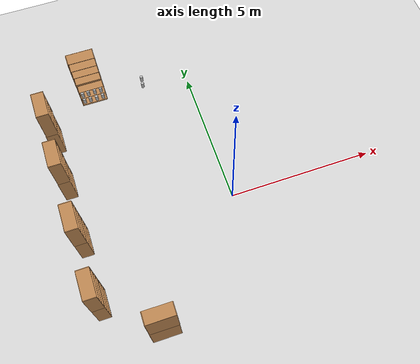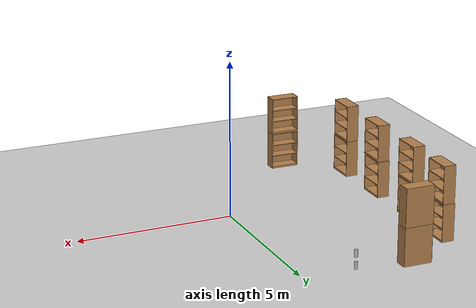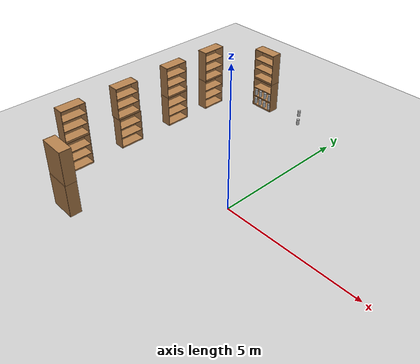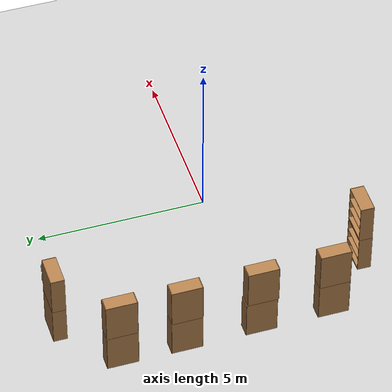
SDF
<sdf version="1.7">
 <world name="default">
  <model name="ground_plane">
   <static>1</static>
   <link name="link">
    <collision name="collision">
     <geometry><plane><normal>0 0 1</normal><size>100 100</size></plane></geometry>
     <surface><friction><ode><mu>100</mu><mu2>50</mu2></ode></friction></surface>
    </collision>
    <visual name="visual">
     <cast_shadows>0</cast_shadows>
     <geometry><plane><normal>0 0 1</normal><size>100 100</size></plane></geometry>
     <material>
      <script><uri>file://media/materials/scripts/gazebo.material</uri><name>Gazebo/Grey</name></script>
     </material>
    </visual>
   </link>
  </model>
  <model name="bookshelf_2_clone_clone">
   <static>1</static>
   <link name="link">
    <inertial><mass>1</mass></inertial>
    <collision name="back">
     <pose>0 0.005 0.6 0 -0 0</pose>
     <geometry><box><size>0.9 0.01 1.2</size></box></geometry>
    </collision>
    <visual name="visual1">
     <pose>0 0.005 0.6 0 -0 0</pose>
     <geometry><box><size>0.9 0.01 1.2</size></box></geometry>
     <material>
      <script><uri>file://media/materials/scripts/gazebo.material</uri><name>Gazebo/Wood</name></script>
     </material>
    </visual>
    <collision name="left_side">
     <pose>0.45 -0.195 0.6 0 -0 0</pose>
     <geometry><box><size>0.02 0.4 1.2</size></box></geometry>
    </collision>
    <visual name="visual2">
     <pose>0.45 -0.195 0.6 0 -0 0</pose>
     <geometry><box><size>0.02 0.4 1.2</size></box></geometry>
     <material>
      <script><uri>file://media/materials/scripts/gazebo.material</uri><name>Gazebo/Wood</name></script>
     </material>
    </visual>
    <collision name="right_side">
     <pose>-0.45 -0.195 0.6 0 -0 0</pose>
     <geometry><box><size>0.02 0.4 1.2</size></box></geometry>
    </collision>
    <visual name="visual3">
     <pose>-0.45 -0.195 0.6 0 -0 0</pose>
     <geometry><box><size>0.02 0.4 1.2</size></box></geometry>
     <material>
      <script><uri>file://media/materials/scripts/gazebo.material</uri><name>Gazebo/Wood</name></script>
     </material>
    </visual>
    <collision name="bottom">
     <pose>0 -0.195 0.03 0 -0 0</pose>
     <geometry><box><size>0.88 0.4 0.06</size></box></geometry>
    </collision>
    <visual name="visual4">
     <pose>0 -0.195 0.03 0 -0 0</pose>
     <geometry><box><size>0.88 0.4 0.06</size></box></geometry>
     <material>
      <script><uri>file://media/materials/scripts/gazebo.material</uri><name>Gazebo/Wood</name></script>
     </material>
    </visual>
    <collision name="top">
     <pose>0 -0.195 1.19 0 -0 0</pose>
     <geometry><box><size>0.88 0.4 0.02</size></box></geometry>
    </collision>
    <visual name="visual5">
     <pose>0 -0.195 1.19 0 -0 0</pose>
     <geometry><box><size>0.88 0.4 0.02</size></box></geometry>
     <material>
      <script><uri>file://media/materials/scripts/gazebo.material</uri><name>Gazebo/Wood</name></script>
     </material>
    </visual>
    <collision name="low_shelf">
     <pose>0 -0.195 0.43 0 -0 0</pose>
     <geometry><box><size>0.88 0.4 0.02</size></box></geometry>
    </collision>
    <visual name="visual6">
     <pose>0 -0.195 0.43 0 -0 0</pose>
     <geometry><box><size>0.88 0.4 0.02</size></box></geometry>
     <material>
      <script><uri>file://media/materials/scripts/gazebo.material</uri><name>Gazebo/Wood</name></script>
     </material>
    </visual>
    <collision name="high_shelf">
     <pose>0 -0.195 0.8 0 -0 0</pose>
     <geometry><box><size>0.88 0.4 0.02</size></box></geometry>
    </collision>
    <visual name="visual7">
     <pose>0 -0.195 0.8 0 -0 0</pose>
     <geometry><box><size>0.88 0.4 0.02</size></box></geometry>
     <material>
      <script><uri>file://media/materials/scripts/gazebo.material</uri><name>Gazebo/Wood</name></script>
     </material>
    </visual>
   </link>
   <pose>-3.46853 5.62428 0 0 -0 0</pose>
  </model>
  <model name="bookshelf_3_clone_clone">
   <static>1</static>
   <link name="link">
    <inertial><mass>1</mass></inertial>
    <collision name="back">
     <pose>0 0.005 0.6 0 -0 0</pose>
     <geometry><box><size>0.9 0.01 1.2</size></box></geometry>
    </collision>
    <visual name="visual1">
     <pose>0 0.005 0.6 0 -0 0</pose>
     <geometry><box><size>0.9 0.01 1.2</size></box></geometry>
     <material>
      <script><uri>file://media/materials/scripts/gazebo.material</uri><name>Gazebo/Wood</name></script>
     </material>
    </visual>
    <collision name="left_side">
     <pose>0.45 -0.195 0.6 0 -0 0</pose>
     <geometry><box><size>0.02 0.4 1.2</size></box></geometry>
    </collision>
    <visual name="visual2">
     <pose>0.45 -0.195 0.6 0 -0 0</pose>
     <geometry><box><size>0.02 0.4 1.2</size></box></geometry>
     <material>
      <script><uri>file://media/materials/scripts/gazebo.material</uri><name>Gazebo/Wood</name></script>
     </material>
    </visual>
    <collision name="right_side">
     <pose>-0.45 -0.195 0.6 0 -0 0</pose>
     <geometry><box><size>0.02 0.4 1.2</size></box></geometry>
    </collision>
    <visual name="visual3">
     <pose>-0.45 -0.195 0.6 0 -0 0</pose>
     <geometry><box><size>0.02 0.4 1.2</size></box></geometry>
     <material>
      <script><uri>file://media/materials/scripts/gazebo.material</uri><name>Gazebo/Wood</name></script>
     </material>
    </visual>
    <collision name="bottom">
     <pose>0 -0.195 0.03 0 -0 0</pose>
     <geometry><box><size>0.88 0.4 0.06</size></box></geometry>
    </collision>
    <visual name="visual4">
     <pose>0 -0.195 0.03 0 -0 0</pose>
     <geometry><box><size>0.88 0.4 0.06</size></box></geometry>
     <material>
      <script><uri>file://media/materials/scripts/gazebo.material</uri><name>Gazebo/Wood</name></script>
     </material>
    </visual>
    <collision name="top">
     <pose>0 -0.195 1.19 0 -0 0</pose>
     <geometry><box><size>0.88 0.4 0.02</size></box></geometry>
    </collision>
    <visual name="visual5">
     <pose>0 -0.195 1.19 0 -0 0</pose>
     <geometry><box><size>0.88 0.4 0.02</size></box></geometry>
     <material>
      <script><uri>file://media/materials/scripts/gazebo.material</uri><name>Gazebo/Wood</name></script>
     </material>
    </visual>
    <collision name="low_shelf">
     <pose>0 -0.195 0.43 0 -0 0</pose>
     <geometry><box><size>0.88 0.4 0.02</size></box></geometry>
    </collision>
    <visual name="visual6">
     <pose>0 -0.195 0.43 0 -0 0</pose>
     <geometry><box><size>0.88 0.4 0.02</size></box></geometry>
     <material>
      <script><uri>file://media/materials/scripts/gazebo.material</uri><name>Gazebo/Wood</name></script>
     </material>
    </visual>
    <collision name="high_shelf">
     <pose>0 -0.195 0.8 0 -0 0</pose>
     <geometry><box><size>0.88 0.4 0.02</size></box></geometry>
    </collision>
    <visual name="visual7">
     <pose>0 -0.195 0.8 0 -0 0</pose>
     <geometry><box><size>0.88 0.4 0.02</size></box></geometry>
     <material>
      <script><uri>file://media/materials/scripts/gazebo.material</uri><name>Gazebo/Wood</name></script>
     </material>
    </visual>
   </link>
   <pose>-3.47373 5.62521 1.20481 0 -0 0</pose>
  </model>
  <model name="bookshelf_5_clone_5">
   <static>1</static>
   <link name="link">
    <inertial><mass>1</mass></inertial>
    <collision name="back">
     <pose>0 0.005 0.6 0 -0 0</pose>
     <geometry><box><size>0.9 0.01 1.2</size></box></geometry>
    </collision>
    <visual name="visual1">
     <pose>0 0.005 0.6 0 -0 0</pose>
     <geometry><box><size>0.9 0.01 1.2</size></box></geometry>
     <material>
      <script><uri>file://media/materials/scripts/gazebo.material</uri><name>Gazebo/Wood</name></script>
     </material>
    </visual>
    <collision name="left_side">
     <pose>0.45 -0.195 0.6 0 -0 0</pose>
     <geometry><box><size>0.02 0.4 1.2</size></box></geometry>
    </collision>
    <visual name="visual2">
     <pose>0.45 -0.195 0.6 0 -0 0</pose>
     <geometry><box><size>0.02 0.4 1.2</size></box></geometry>
     <material>
      <script><uri>file://media/materials/scripts/gazebo.material</uri><name>Gazebo/Wood</name></script>
     </material>
    </visual>
    <collision name="right_side">
     <pose>-0.45 -0.195 0.6 0 -0 0</pose>
     <geometry><box><size>0.02 0.4 1.2</size></box></geometry>
    </collision>
    <visual name="visual3">
     <pose>-0.45 -0.195 0.6 0 -0 0</pose>
     <geometry><box><size>0.02 0.4 1.2</size></box></geometry>
     <material>
      <script><uri>file://media/materials/scripts/gazebo.material</uri><name>Gazebo/Wood</name></script>
     </material>
    </visual>
    <collision name="bottom">
     <pose>0 -0.195 0.03 0 -0 0</pose>
     <geometry><box><size>0.88 0.4 0.06</size></box></geometry>
    </collision>
    <visual name="visual4">
     <pose>0 -0.195 0.03 0 -0 0</pose>
     <geometry><box><size>0.88 0.4 0.06</size></box></geometry>
     <material>
      <script><uri>file://media/materials/scripts/gazebo.material</uri><name>Gazebo/Wood</name></script>
     </material>
    </visual>
    <collision name="top">
     <pose>0 -0.195 1.19 0 -0 0</pose>
     <geometry><box><size>0.88 0.4 0.02</size></box></geometry>
    </collision>
    <visual name="visual5">
     <pose>0 -0.195 1.19 0 -0 0</pose>
     <geometry><box><size>0.88 0.4 0.02</size></box></geometry>
     <material>
      <script><uri>file://media/materials/scripts/gazebo.material</uri><name>Gazebo/Wood</name></script>
     </material>
    </visual>
    <collision name="low_shelf">
     <pose>0 -0.195 0.43 0 -0 0</pose>
     <geometry><box><size>0.88 0.4 0.02</size></box></geometry>
    </collision>
    <visual name="visual6">
     <pose>0 -0.195 0.43 0 -0 0</pose>
     <geometry><box><size>0.88 0.4 0.02</size></box></geometry>
     <material>
      <script><uri>file://media/materials/scripts/gazebo.material</uri><name>Gazebo/Wood</name></script>
     </material>
    </visual>
    <collision name="high_shelf">
     <pose>0 -0.195 0.8 0 -0 0</pose>
     <geometry><box><size>0.88 0.4 0.02</size></box></geometry>
    </collision>
    <visual name="visual7">
     <pose>0 -0.195 0.8 0 -0 0</pose>
     <geometry><box><size>0.88 0.4 0.02</size></box></geometry>
     <material>
      <script><uri>file://media/materials/scripts/gazebo.material</uri><name>Gazebo/Wood</name></script>
     </material>
    </visual>
   </link>
   <pose>-3.44979 -3.80253 0 0 -0 3.12955</pose>
  </model>
  <model name="bookshelf_5_clone_clone_1">
   <static>1</static>
   <link name="link">
    <inertial><mass>1</mass></inertial>
    <collision name="back">
     <pose>0 0.005 0.6 0 -0 0</pose>
     <geometry><box><size>0.9 0.01 1.2</size></box></geometry>
    </collision>
    <visual name="visual1">
     <pose>0 0.005 0.6 0 -0 0</pose>
     <geometry><box><size>0.9 0.01 1.2</size></box></geometry>
     <material>
      <script><uri>file://media/materials/scripts/gazebo.material</uri><name>Gazebo/Wood</name></script>
     </material>
    </visual>
    <collision name="left_side">
     <pose>0.45 -0.195 0.6 0 -0 0</pose>
     <geometry><box><size>0.02 0.4 1.2</size></box></geometry>
    </collision>
    <visual name="visual2">
     <pose>0.45 -0.195 0.6 0 -0 0</pose>
     <geometry><box><size>0.02 0.4 1.2</size></box></geometry>
     <material>
      <script><uri>file://media/materials/scripts/gazebo.material</uri><name>Gazebo/Wood</name></script>
     </material>
    </visual>
    <collision name="right_side">
     <pose>-0.45 -0.195 0.6 0 -0 0</pose>
     <geometry><box><size>0.02 0.4 1.2</size></box></geometry>
    </collision>
    <visual name="visual3">
     <pose>-0.45 -0.195 0.6 0 -0 0</pose>
     <geometry><box><size>0.02 0.4 1.2</size></box></geometry>
     <material>
      <script><uri>file://media/materials/scripts/gazebo.material</uri><name>Gazebo/Wood</name></script>
     </material>
    </visual>
    <collision name="bottom">
     <pose>0 -0.195 0.03 0 -0 0</pose>
     <geometry><box><size>0.88 0.4 0.06</size></box></geometry>
    </collision>
    <visual name="visual4">
     <pose>0 -0.195 0.03 0 -0 0</pose>
     <geometry><box><size>0.88 0.4 0.06</size></box></geometry>
     <material>
      <script><uri>file://media/materials/scripts/gazebo.material</uri><name>Gazebo/Wood</name></script>
     </material>
    </visual>
    <collision name="top">
     <pose>0 -0.195 1.19 0 -0 0</pose>
     <geometry><box><size>0.88 0.4 0.02</size></box></geometry>
    </collision>
    <visual name="visual5">
     <pose>0 -0.195 1.19 0 -0 0</pose>
     <geometry><box><size>0.88 0.4 0.02</size></box></geometry>
     <material>
      <script><uri>file://media/materials/scripts/gazebo.material</uri><name>Gazebo/Wood</name></script>
     </material>
    </visual>
    <collision name="low_shelf">
     <pose>0 -0.195 0.43 0 -0 0</pose>
     <geometry><box><size>0.88 0.4 0.02</size></box></geometry>
    </collision>
    <visual name="visual6">
     <pose>0 -0.195 0.43 0 -0 0</pose>
     <geometry><box><size>0.88 0.4 0.02</size></box></geometry>
     <material>
      <script><uri>file://media/materials/scripts/gazebo.material</uri><name>Gazebo/Wood</name></script>
     </material>
    </visual>
    <collision name="high_shelf">
     <pose>0 -0.195 0.8 0 -0 0</pose>
     <geometry><box><size>0.88 0.4 0.02</size></box></geometry>
    </collision>
    <visual name="visual7">
     <pose>0 -0.195 0.8 0 -0 0</pose>
     <geometry><box><size>0.88 0.4 0.02</size></box></geometry>
     <material>
      <script><uri>file://media/materials/scripts/gazebo.material</uri><name>Gazebo/Wood</name></script>
     </material>
    </visual>
   </link>
   <pose>-3.44383 -3.79926 1.21139 0 -0 3.12955</pose>
  </model>
  <model name="bookshelf_0_clone_0">
   <static>1</static>
   <link name="link">
    <inertial><mass>1</mass></inertial>
    <collision name="back">
     <pose>0 0.005 0.6 0 -0 0</pose>
     <geometry><box><size>0.9 0.01 1.2</size></box></geometry>
    </collision>
    <visual name="visual1">
     <pose>0 0.005 0.6 0 -0 0</pose>
     <geometry><box><size>0.9 0.01 1.2</size></box></geometry>
     <material>
      <script><uri>file://media/materials/scripts/gazebo.material</uri><name>Gazebo/Wood</name></script>
     </material>
    </visual>
    <collision name="left_side">
     <pose>0.45 -0.195 0.6 0 -0 0</pose>
     <geometry><box><size>0.02 0.4 1.2</size></box></geometry>
    </collision>
    <visual name="visual2">
     <pose>0.45 -0.195 0.6 0 -0 0</pose>
     <geometry><box><size>0.02 0.4 1.2</size></box></geometry>
     <material>
      <script><uri>file://media/materials/scripts/gazebo.material</uri><name>Gazebo/Wood</name></script>
     </material>
    </visual>
    <collision name="right_side">
     <pose>-0.45 -0.195 0.6 0 -0 0</pose>
     <geometry><box><size>0.02 0.4 1.2</size></box></geometry>
    </collision>
    <visual name="visual3">
     <pose>-0.45 -0.195 0.6 0 -0 0</pose>
     <geometry><box><size>0.02 0.4 1.2</size></box></geometry>
     <material>
      <script><uri>file://media/materials/scripts/gazebo.material</uri><name>Gazebo/Wood</name></script>
     </material>
    </visual>
    <collision name="bottom">
     <pose>0 -0.195 0.03 0 -0 0</pose>
     <geometry><box><size>0.88 0.4 0.06</size></box></geometry>
    </collision>
    <visual name="visual4">
     <pose>0 -0.195 0.03 0 -0 0</pose>
     <geometry><box><size>0.88 0.4 0.06</size></box></geometry>
     <material>
      <script><uri>file://media/materials/scripts/gazebo.material</uri><name>Gazebo/Wood</name></script>
     </material>
    </visual>
    <collision name="top">
     <pose>0 -0.195 1.19 0 -0 0</pose>
     <geometry><box><size>0.88 0.4 0.02</size></box></geometry>
    </collision>
    <visual name="visual5">
     <pose>0 -0.195 1.19 0 -0 0</pose>
     <geometry><box><size>0.88 0.4 0.02</size></box></geometry>
     <material>
      <script><uri>file://media/materials/scripts/gazebo.material</uri><name>Gazebo/Wood</name></script>
     </material>
    </visual>
    <collision name="low_shelf">
     <pose>0 -0.195 0.43 0 -0 0</pose>
     <geometry><box><size>0.88 0.4 0.02</size></box></geometry>
    </collision>
    <visual name="visual6">
     <pose>0 -0.195 0.43 0 -0 0</pose>
     <geometry><box><size>0.88 0.4 0.02</size></box></geometry>
     <material>
      <script><uri>file://media/materials/scripts/gazebo.material</uri><name>Gazebo/Wood</name></script>
     </material>
    </visual>
    <collision name="high_shelf">
     <pose>0 -0.195 0.8 0 -0 0</pose>
     <geometry><box><size>0.88 0.4 0.02</size></box></geometry>
    </collision>
    <visual name="visual7">
     <pose>0 -0.195 0.8 0 -0 0</pose>
     <geometry><box><size>0.88 0.4 0.02</size></box></geometry>
     <material>
      <script><uri>file://media/materials/scripts/gazebo.material</uri><name>Gazebo/Wood</name></script>
     </material>
    </visual>
   </link>
   <pose>-5.30935 -0.025093 0 0 -0 1.5697</pose>
  </model>
  <model name="bookshelf_0_clone_0_clone">
   <static>1</static>
   <link name="link">
    <inertial><mass>1</mass></inertial>
    <collision name="back">
     <pose>0 0.005 0.6 0 -0 0</pose>
     <geometry><box><size>0.9 0.01 1.2</size></box></geometry>
    </collision>
    <visual name="visual1">
     <pose>0 0.005 0.6 0 -0 0</pose>
     <geometry><box><size>0.9 0.01 1.2</size></box></geometry>
     <material>
      <script><uri>file://media/materials/scripts/gazebo.material</uri><name>Gazebo/Wood</name></script>
     </material>
    </visual>
    <collision name="left_side">
     <pose>0.45 -0.195 0.6 0 -0 0</pose>
     <geometry><box><size>0.02 0.4 1.2</size></box></geometry>
    </collision>
    <visual name="visual2">
     <pose>0.45 -0.195 0.6 0 -0 0</pose>
     <geometry><box><size>0.02 0.4 1.2</size></box></geometry>
     <material>
      <script><uri>file://media/materials/scripts/gazebo.material</uri><name>Gazebo/Wood</name></script>
     </material>
    </visual>
    <collision name="right_side">
     <pose>-0.45 -0.195 0.6 0 -0 0</pose>
     <geometry><box><size>0.02 0.4 1.2</size></box></geometry>
    </collision>
    <visual name="visual3">
     <pose>-0.45 -0.195 0.6 0 -0 0</pose>
     <geometry><box><size>0.02 0.4 1.2</size></box></geometry>
     <material>
      <script><uri>file://media/materials/scripts/gazebo.material</uri><name>Gazebo/Wood</name></script>
     </material>
    </visual>
    <collision name="bottom">
     <pose>0 -0.195 0.03 0 -0 0</pose>
     <geometry><box><size>0.88 0.4 0.06</size></box></geometry>
    </collision>
    <visual name="visual4">
     <pose>0 -0.195 0.03 0 -0 0</pose>
     <geometry><box><size>0.88 0.4 0.06</size></box></geometry>
     <material>
      <script><uri>file://media/materials/scripts/gazebo.material</uri><name>Gazebo/Wood</name></script>
     </material>
    </visual>
    <collision name="top">
     <pose>0 -0.195 1.19 0 -0 0</pose>
     <geometry><box><size>0.88 0.4 0.02</size></box></geometry>
    </collision>
    <visual name="visual5">
     <pose>0 -0.195 1.19 0 -0 0</pose>
     <geometry><box><size>0.88 0.4 0.02</size></box></geometry>
     <material>
      <script><uri>file://media/materials/scripts/gazebo.material</uri><name>Gazebo/Wood</name></script>
     </material>
    </visual>
    <collision name="low_shelf">
     <pose>0 -0.195 0.43 0 -0 0</pose>
     <geometry><box><size>0.88 0.4 0.02</size></box></geometry>
    </collision>
    <visual name="visual6">
     <pose>0 -0.195 0.43 0 -0 0</pose>
     <geometry><box><size>0.88 0.4 0.02</size></box></geometry>
     <material>
      <script><uri>file://media/materials/scripts/gazebo.material</uri><name>Gazebo/Wood</name></script>
     </material>
    </visual>
    <collision name="high_shelf">
     <pose>0 -0.195 0.8 0 -0 0</pose>
     <geometry><box><size>0.88 0.4 0.02</size></box></geometry>
    </collision>
    <visual name="visual7">
     <pose>0 -0.195 0.8 0 -0 0</pose>
     <geometry><box><size>0.88 0.4 0.02</size></box></geometry>
     <material>
      <script><uri>file://media/materials/scripts/gazebo.material</uri><name>Gazebo/Wood</name></script>
     </material>
    </visual>
   </link>
   <pose>-5.33454 2.15943 0 0 -0 1.5697</pose>
  </model>
  <model name="bookshelf_0_clone_0_clone_0">
   <static>1</static>
   <link name="link">
    <inertial><mass>1</mass></inertial>
    <collision name="back">
     <pose>0 0.005 0.6 0 -0 0</pose>
     <geometry><box><size>0.9 0.01 1.2</size></box></geometry>
    </collision>
    <visual name="visual1">
     <pose>0 0.005 0.6 0 -0 0</pose>
     <geometry><box><size>0.9 0.01 1.2</size></box></geometry>
     <material>
      <script><uri>file://media/materials/scripts/gazebo.material</uri><name>Gazebo/Wood</name></script>
     </material>
    </visual>
    <collision name="left_side">
     <pose>0.45 -0.195 0.6 0 -0 0</pose>
     <geometry><box><size>0.02 0.4 1.2</size></box></geometry>
    </collision>
    <visual name="visual2">
     <pose>0.45 -0.195 0.6 0 -0 0</pose>
     <geometry><box><size>0.02 0.4 1.2</size></box></geometry>
     <material>
      <script><uri>file://media/materials/scripts/gazebo.material</uri><name>Gazebo/Wood</name></script>
     </material>
    </visual>
    <collision name="right_side">
     <pose>-0.45 -0.195 0.6 0 -0 0</pose>
     <geometry><box><size>0.02 0.4 1.2</size></box></geometry>
    </collision>
    <visual name="visual3">
     <pose>-0.45 -0.195 0.6 0 -0 0</pose>
     <geometry><box><size>0.02 0.4 1.2</size></box></geometry>
     <material>
      <script><uri>file://media/materials/scripts/gazebo.material</uri><name>Gazebo/Wood</name></script>
     </material>
    </visual>
    <collision name="bottom">
     <pose>0 -0.195 0.03 0 -0 0</pose>
     <geometry><box><size>0.88 0.4 0.06</size></box></geometry>
    </collision>
    <visual name="visual4">
     <pose>0 -0.195 0.03 0 -0 0</pose>
     <geometry><box><size>0.88 0.4 0.06</size></box></geometry>
     <material>
      <script><uri>file://media/materials/scripts/gazebo.material</uri><name>Gazebo/Wood</name></script>
     </material>
    </visual>
    <collision name="top">
     <pose>0 -0.195 1.19 0 -0 0</pose>
     <geometry><box><size>0.88 0.4 0.02</size></box></geometry>
    </collision>
    <visual name="visual5">
     <pose>0 -0.195 1.19 0 -0 0</pose>
     <geometry><box><size>0.88 0.4 0.02</size></box></geometry>
     <material>
      <script><uri>file://media/materials/scripts/gazebo.material</uri><name>Gazebo/Wood</name></script>
     </material>
    </visual>
    <collision name="low_shelf">
     <pose>0 -0.195 0.43 0 -0 0</pose>
     <geometry><box><size>0.88 0.4 0.02</size></box></geometry>
    </collision>
    <visual name="visual6">
     <pose>0 -0.195 0.43 0 -0 0</pose>
     <geometry><box><size>0.88 0.4 0.02</size></box></geometry>
     <material>
      <script><uri>file://media/materials/scripts/gazebo.material</uri><name>Gazebo/Wood</name></script>
     </material>
    </visual>
    <collision name="high_shelf">
     <pose>0 -0.195 0.8 0 -0 0</pose>
     <geometry><box><size>0.88 0.4 0.02</size></box></geometry>
    </collision>
    <visual name="visual7">
     <pose>0 -0.195 0.8 0 -0 0</pose>
     <geometry><box><size>0.88 0.4 0.02</size></box></geometry>
     <material>
      <script><uri>file://media/materials/scripts/gazebo.material</uri><name>Gazebo/Wood</name></script>
     </material>
    </visual>
   </link>
   <pose>-5.32765 4.01778 0 0 -0 1.5697</pose>
  </model>
  <model name="bookshelf_0_clone_0_clone_1_clone_0">
   <static>1</static>
   <link name="link">
    <inertial><mass>1</mass></inertial>
    <collision name="back">
     <pose>0 0.005 0.6 0 -0 0</pose>
     <geometry><box><size>0.9 0.01 1.2</size></box></geometry>
    </collision>
    <visual name="visual1">
     <pose>0 0.005 0.6 0 -0 0</pose>
     <geometry><box><size>0.9 0.01 1.2</size></box></geometry>
     <material>
      <script><uri>file://media/materials/scripts/gazebo.material</uri><name>Gazebo/Wood</name></script>
     </material>
    </visual>
    <collision name="left_side">
     <pose>0.45 -0.195 0.6 0 -0 0</pose>
     <geometry><box><size>0.02 0.4 1.2</size></box></geometry>
    </collision>
    <visual name="visual2">
     <pose>0.45 -0.195 0.6 0 -0 0</pose>
     <geometry><box><size>0.02 0.4 1.2</size></box></geometry>
     <material>
      <script><uri>file://media/materials/scripts/gazebo.material</uri><name>Gazebo/Wood</name></script>
     </material>
    </visual>
    <collision name="right_side">
     <pose>-0.45 -0.195 0.6 0 -0 0</pose>
     <geometry><box><size>0.02 0.4 1.2</size></box></geometry>
    </collision>
    <visual name="visual3">
     <pose>-0.45 -0.195 0.6 0 -0 0</pose>
     <geometry><box><size>0.02 0.4 1.2</size></box></geometry>
     <material>
      <script><uri>file://media/materials/scripts/gazebo.material</uri><name>Gazebo/Wood</name></script>
     </material>
    </visual>
    <collision name="bottom">
     <pose>0 -0.195 0.03 0 -0 0</pose>
     <geometry><box><size>0.88 0.4 0.06</size></box></geometry>
    </collision>
    <visual name="visual4">
     <pose>0 -0.195 0.03 0 -0 0</pose>
     <geometry><box><size>0.88 0.4 0.06</size></box></geometry>
     <material>
      <script><uri>file://media/materials/scripts/gazebo.material</uri><name>Gazebo/Wood</name></script>
     </material>
    </visual>
    <collision name="top">
     <pose>0 -0.195 1.19 0 -0 0</pose>
     <geometry><box><size>0.88 0.4 0.02</size></box></geometry>
    </collision>
    <visual name="visual5">
     <pose>0 -0.195 1.19 0 -0 0</pose>
     <geometry><box><size>0.88 0.4 0.02</size></box></geometry>
     <material>
      <script><uri>file://media/materials/scripts/gazebo.material</uri><name>Gazebo/Wood</name></script>
     </material>
    </visual>
    <collision name="low_shelf">
     <pose>0 -0.195 0.43 0 -0 0</pose>
     <geometry><box><size>0.88 0.4 0.02</size></box></geometry>
    </collision>
    <visual name="visual6">
     <pose>0 -0.195 0.43 0 -0 0</pose>
     <geometry><box><size>0.88 0.4 0.02</size></box></geometry>
     <material>
      <script><uri>file://media/materials/scripts/gazebo.material</uri><name>Gazebo/Wood</name></script>
     </material>
    </visual>
    <collision name="high_shelf">
     <pose>0 -0.195 0.8 0 -0 0</pose>
     <geometry><box><size>0.88 0.4 0.02</size></box></geometry>
    </collision>
    <visual name="visual7">
     <pose>0 -0.195 0.8 0 -0 0</pose>
     <geometry><box><size>0.88 0.4 0.02</size></box></geometry>
     <material>
      <script><uri>file://media/materials/scripts/gazebo.material</uri><name>Gazebo/Wood</name></script>
     </material>
    </visual>
   </link>
   <pose>-5.32334 2.15341 1.21067 0 -0 1.5697</pose>
  </model>
  <model name="bookshelf_0_clone_0_clone_1_clone_1">
   <static>1</static>
   <link name="link">
    <inertial><mass>1</mass></inertial>
    <collision name="back">
     <pose>0 0.005 0.6 0 -0 0</pose>
     <geometry><box><size>0.9 0.01 1.2</size></box></geometry>
    </collision>
    <visual name="visual1">
     <pose>0 0.005 0.6 0 -0 0</pose>
     <geometry><box><size>0.9 0.01 1.2</size></box></geometry>
     <material>
      <script><uri>file://media/materials/scripts/gazebo.material</uri><name>Gazebo/Wood</name></script>
     </material>
    </visual>
    <collision name="left_side">
     <pose>0.45 -0.195 0.6 0 -0 0</pose>
     <geometry><box><size>0.02 0.4 1.2</size></box></geometry>
    </collision>
    <visual name="visual2">
     <pose>0.45 -0.195 0.6 0 -0 0</pose>
     <geometry><box><size>0.02 0.4 1.2</size></box></geometry>
     <material>
      <script><uri>file://media/materials/scripts/gazebo.material</uri><name>Gazebo/Wood</name></script>
     </material>
    </visual>
    <collision name="right_side">
     <pose>-0.45 -0.195 0.6 0 -0 0</pose>
     <geometry><box><size>0.02 0.4 1.2</size></box></geometry>
    </collision>
    <visual name="visual3">
     <pose>-0.45 -0.195 0.6 0 -0 0</pose>
     <geometry><box><size>0.02 0.4 1.2</size></box></geometry>
     <material>
      <script><uri>file://media/materials/scripts/gazebo.material</uri><name>Gazebo/Wood</name></script>
     </material>
    </visual>
    <collision name="bottom">
     <pose>0 -0.195 0.03 0 -0 0</pose>
     <geometry><box><size>0.88 0.4 0.06</size></box></geometry>
    </collision>
    <visual name="visual4">
     <pose>0 -0.195 0.03 0 -0 0</pose>
     <geometry><box><size>0.88 0.4 0.06</size></box></geometry>
     <material>
      <script><uri>file://media/materials/scripts/gazebo.material</uri><name>Gazebo/Wood</name></script>
     </material>
    </visual>
    <collision name="top">
     <pose>0 -0.195 1.19 0 -0 0</pose>
     <geometry><box><size>0.88 0.4 0.02</size></box></geometry>
    </collision>
    <visual name="visual5">
     <pose>0 -0.195 1.19 0 -0 0</pose>
     <geometry><box><size>0.88 0.4 0.02</size></box></geometry>
     <material>
      <script><uri>file://media/materials/scripts/gazebo.material</uri><name>Gazebo/Wood</name></script>
     </material>
    </visual>
    <collision name="low_shelf">
     <pose>0 -0.195 0.43 0 -0 0</pose>
     <geometry><box><size>0.88 0.4 0.02</size></box></geometry>
    </collision>
    <visual name="visual6">
     <pose>0 -0.195 0.43 0 -0 0</pose>
     <geometry><box><size>0.88 0.4 0.02</size></box></geometry>
     <material>
      <script><uri>file://media/materials/scripts/gazebo.material</uri><name>Gazebo/Wood</name></script>
     </material>
    </visual>
    <collision name="high_shelf">
     <pose>0 -0.195 0.8 0 -0 0</pose>
     <geometry><box><size>0.88 0.4 0.02</size></box></geometry>
    </collision>
    <visual name="visual7">
     <pose>0 -0.195 0.8 0 -0 0</pose>
     <geometry><box><size>0.88 0.4 0.02</size></box></geometry>
     <material>
      <script><uri>file://media/materials/scripts/gazebo.material</uri><name>Gazebo/Wood</name></script>
     </material>
    </visual>
   </link>
   <pose>-5.31196 4.0164 1.21067 0 -0 1.5697</pose>
  </model>
  <model name="bookshelf_0_clone_0_clone_1">
   <static>1</static>
   <link name="link">
    <inertial><mass>1</mass></inertial>
    <collision name="back">
     <pose>0 0.005 0.6 0 -0 0</pose>
     <geometry><box><size>0.9 0.01 1.2</size></box></geometry>
    </collision>
    <visual name="visual1">
     <pose>0 0.005 0.6 0 -0 0</pose>
     <geometry><box><size>0.9 0.01 1.2</size></box></geometry>
     <material>
      <script><uri>file://media/materials/scripts/gazebo.material</uri><name>Gazebo/Wood</name></script>
     </material>
    </visual>
    <collision name="left_side">
     <pose>0.45 -0.195 0.6 0 -0 0</pose>
     <geometry><box><size>0.02 0.4 1.2</size></box></geometry>
    </collision>
    <visual name="visual2">
     <pose>0.45 -0.195 0.6 0 -0 0</pose>
     <geometry><box><size>0.02 0.4 1.2</size></box></geometry>
     <material>
      <script><uri>file://media/materials/scripts/gazebo.material</uri><name>Gazebo/Wood</name></script>
     </material>
    </visual>
    <collision name="right_side">
     <pose>-0.45 -0.195 0.6 0 -0 0</pose>
     <geometry><box><size>0.02 0.4 1.2</size></box></geometry>
    </collision>
    <visual name="visual3">
     <pose>-0.45 -0.195 0.6 0 -0 0</pose>
     <geometry><box><size>0.02 0.4 1.2</size></box></geometry>
     <material>
      <script><uri>file://media/materials/scripts/gazebo.material</uri><name>Gazebo/Wood</name></script>
     </material>
    </visual>
    <collision name="bottom">
     <pose>0 -0.195 0.03 0 -0 0</pose>
     <geometry><box><size>0.88 0.4 0.06</size></box></geometry>
    </collision>
    <visual name="visual4">
     <pose>0 -0.195 0.03 0 -0 0</pose>
     <geometry><box><size>0.88 0.4 0.06</size></box></geometry>
     <material>
      <script><uri>file://media/materials/scripts/gazebo.material</uri><name>Gazebo/Wood</name></script>
     </material>
    </visual>
    <collision name="top">
     <pose>0 -0.195 1.19 0 -0 0</pose>
     <geometry><box><size>0.88 0.4 0.02</size></box></geometry>
    </collision>
    <visual name="visual5">
     <pose>0 -0.195 1.19 0 -0 0</pose>
     <geometry><box><size>0.88 0.4 0.02</size></box></geometry>
     <material>
      <script><uri>file://media/materials/scripts/gazebo.material</uri><name>Gazebo/Wood</name></script>
     </material>
    </visual>
    <collision name="low_shelf">
     <pose>0 -0.195 0.43 0 -0 0</pose>
     <geometry><box><size>0.88 0.4 0.02</size></box></geometry>
    </collision>
    <visual name="visual6">
     <pose>0 -0.195 0.43 0 -0 0</pose>
     <geometry><box><size>0.88 0.4 0.02</size></box></geometry>
     <material>
      <script><uri>file://media/materials/scripts/gazebo.material</uri><name>Gazebo/Wood</name></script>
     </material>
    </visual>
    <collision name="high_shelf">
     <pose>0 -0.195 0.8 0 -0 0</pose>
     <geometry><box><size>0.88 0.4 0.02</size></box></geometry>
    </collision>
    <visual name="visual7">
     <pose>0 -0.195 0.8 0 -0 0</pose>
     <geometry><box><size>0.88 0.4 0.02</size></box></geometry>
     <material>
      <script><uri>file://media/materials/scripts/gazebo.material</uri><name>Gazebo/Wood</name></script>
     </material>
    </visual>
   </link>
   <pose>-5.28921 -2.17241 0 0 -0 1.5697</pose>
  </model>
  <model name="bookshelf_0_clone_0_clone_1_clone_0_clone">
   <static>1</static>
   <link name="link">
    <inertial><mass>1</mass></inertial>
    <collision name="back">
     <pose>0 0.005 0.6 0 -0 0</pose>
     <geometry><box><size>0.9 0.01 1.2</size></box></geometry>
    </collision>
    <visual name="visual1">
     <pose>0 0.005 0.6 0 -0 0</pose>
     <geometry><box><size>0.9 0.01 1.2</size></box></geometry>
     <material>
      <script><uri>file://media/materials/scripts/gazebo.material</uri><name>Gazebo/Wood</name></script>
     </material>
    </visual>
    <collision name="left_side">
     <pose>0.45 -0.195 0.6 0 -0 0</pose>
     <geometry><box><size>0.02 0.4 1.2</size></box></geometry>
    </collision>
    <visual name="visual2">
     <pose>0.45 -0.195 0.6 0 -0 0</pose>
     <geometry><box><size>0.02 0.4 1.2</size></box></geometry>
     <material>
      <script><uri>file://media/materials/scripts/gazebo.material</uri><name>Gazebo/Wood</name></script>
     </material>
    </visual>
    <collision name="right_side">
     <pose>-0.45 -0.195 0.6 0 -0 0</pose>
     <geometry><box><size>0.02 0.4 1.2</size></box></geometry>
    </collision>
    <visual name="visual3">
     <pose>-0.45 -0.195 0.6 0 -0 0</pose>
     <geometry><box><size>0.02 0.4 1.2</size></box></geometry>
     <material>
      <script><uri>file://media/materials/scripts/gazebo.material</uri><name>Gazebo/Wood</name></script>
     </material>
    </visual>
    <collision name="bottom">
     <pose>0 -0.195 0.03 0 -0 0</pose>
     <geometry><box><size>0.88 0.4 0.06</size></box></geometry>
    </collision>
    <visual name="visual4">
     <pose>0 -0.195 0.03 0 -0 0</pose>
     <geometry><box><size>0.88 0.4 0.06</size></box></geometry>
     <material>
      <script><uri>file://media/materials/scripts/gazebo.material</uri><name>Gazebo/Wood</name></script>
     </material>
    </visual>
    <collision name="top">
     <pose>0 -0.195 1.19 0 -0 0</pose>
     <geometry><box><size>0.88 0.4 0.02</size></box></geometry>
    </collision>
    <visual name="visual5">
     <pose>0 -0.195 1.19 0 -0 0</pose>
     <geometry><box><size>0.88 0.4 0.02</size></box></geometry>
     <material>
      <script><uri>file://media/materials/scripts/gazebo.material</uri><name>Gazebo/Wood</name></script>
     </material>
    </visual>
    <collision name="low_shelf">
     <pose>0 -0.195 0.43 0 -0 0</pose>
     <geometry><box><size>0.88 0.4 0.02</size></box></geometry>
    </collision>
    <visual name="visual6">
     <pose>0 -0.195 0.43 0 -0 0</pose>
     <geometry><box><size>0.88 0.4 0.02</size></box></geometry>
     <material>
      <script><uri>file://media/materials/scripts/gazebo.material</uri><name>Gazebo/Wood</name></script>
     </material>
    </visual>
    <collision name="high_shelf">
     <pose>0 -0.195 0.8 0 -0 0</pose>
     <geometry><box><size>0.88 0.4 0.02</size></box></geometry>
    </collision>
    <visual name="visual7">
     <pose>0 -0.195 0.8 0 -0 0</pose>
     <geometry><box><size>0.88 0.4 0.02</size></box></geometry>
     <material>
      <script><uri>file://media/materials/scripts/gazebo.material</uri><name>Gazebo/Wood</name></script>
     </material>
    </visual>
   </link>
   <pose>-5.30537 -0.057137 1.21067 0 -0 1.5697</pose>
  </model>
  <model name="bookshelf_0_clone_0_clone_1_clone_0_clone_0">
   <static>1</static>
   <link name="link">
    <inertial><mass>1</mass></inertial>
    <collision name="back">
     <pose>0 0.005 0.6 0 -0 0</pose>
     <geometry><box><size>0.9 0.01 1.2</size></box></geometry>
    </collision>
    <visual name="visual1">
     <pose>0 0.005 0.6 0 -0 0</pose>
     <geometry><box><size>0.9 0.01 1.2</size></box></geometry>
     <material>
      <script><uri>file://media/materials/scripts/gazebo.material</uri><name>Gazebo/Wood</name></script>
     </material>
    </visual>
    <collision name="left_side">
     <pose>0.45 -0.195 0.6 0 -0 0</pose>
     <geometry><box><size>0.02 0.4 1.2</size></box></geometry>
    </collision>
    <visual name="visual2">
     <pose>0.45 -0.195 0.6 0 -0 0</pose>
     <geometry><box><size>0.02 0.4 1.2</size></box></geometry>
     <material>
      <script><uri>file://media/materials/scripts/gazebo.material</uri><name>Gazebo/Wood</name></script>
     </material>
    </visual>
    <collision name="right_side">
     <pose>-0.45 -0.195 0.6 0 -0 0</pose>
     <geometry><box><size>0.02 0.4 1.2</size></box></geometry>
    </collision>
    <visual name="visual3">
     <pose>-0.45 -0.195 0.6 0 -0 0</pose>
     <geometry><box><size>0.02 0.4 1.2</size></box></geometry>
     <material>
      <script><uri>file://media/materials/scripts/gazebo.material</uri><name>Gazebo/Wood</name></script>
     </material>
    </visual>
    <collision name="bottom">
     <pose>0 -0.195 0.03 0 -0 0</pose>
     <geometry><box><size>0.88 0.4 0.06</size></box></geometry>
    </collision>
    <visual name="visual4">
     <pose>0 -0.195 0.03 0 -0 0</pose>
     <geometry><box><size>0.88 0.4 0.06</size></box></geometry>
     <material>
      <script><uri>file://media/materials/scripts/gazebo.material</uri><name>Gazebo/Wood</name></script>
     </material>
    </visual>
    <collision name="top">
     <pose>0 -0.195 1.19 0 -0 0</pose>
     <geometry><box><size>0.88 0.4 0.02</size></box></geometry>
    </collision>
    <visual name="visual5">
     <pose>0 -0.195 1.19 0 -0 0</pose>
     <geometry><box><size>0.88 0.4 0.02</size></box></geometry>
     <material>
      <script><uri>file://media/materials/scripts/gazebo.material</uri><name>Gazebo/Wood</name></script>
     </material>
    </visual>
    <collision name="low_shelf">
     <pose>0 -0.195 0.43 0 -0 0</pose>
     <geometry><box><size>0.88 0.4 0.02</size></box></geometry>
    </collision>
    <visual name="visual6">
     <pose>0 -0.195 0.43 0 -0 0</pose>
     <geometry><box><size>0.88 0.4 0.02</size></box></geometry>
     <material>
      <script><uri>file://media/materials/scripts/gazebo.material</uri><name>Gazebo/Wood</name></script>
     </material>
    </visual>
    <collision name="high_shelf">
     <pose>0 -0.195 0.8 0 -0 0</pose>
     <geometry><box><size>0.88 0.4 0.02</size></box></geometry>
    </collision>
    <visual name="visual7">
     <pose>0 -0.195 0.8 0 -0 0</pose>
     <geometry><box><size>0.88 0.4 0.02</size></box></geometry>
     <material>
      <script><uri>file://media/materials/scripts/gazebo.material</uri><name>Gazebo/Wood</name></script>
     </material>
    </visual>
   </link>
   <pose>-5.28921 -2.17241 1.21067 0 -0 1.5697</pose>
  </model>
  <model name="beer">
   <link name="link">
    <pose>0 0 0.115 0 -0 0</pose>
    <inertial>
     <mass>0.39</mass>
     <inertia><ixx>0.00058</ixx><ixy>0</ixy><ixz>0</ixz><iyy>0.00058</iyy><iyz>0</iyz><izz>0.00019</izz></inertia>
    </inertial>
    <collision name="collision">
     <geometry><cylinder><radius>0.055</radius><length>0.23</length></cylinder></geometry>
    </collision>
    <visual name="visual">
     <geometry><cylinder><radius>0.055</radius><length>0.23</length></cylinder></geometry>
     <material>
      <script>
       <uri>model://beer/materials/scripts</uri>
       <uri>model://beer/materials/textures</uri>
       <name>Beer/Diffuse</name>
      </script>
     </material>
    </visual>
   </link>
   <pose>-3.8231 5.3078 0.059992 2.7e-05 1.4e-05 0.019116</pose>
  </model>
  <model name="beer_0">
   <link name="link">
    <pose>0 0 0.115 0 -0 0</pose>
    <inertial>
     <mass>0.39</mass>
     <inertia><ixx>0.00058</ixx><ixy>0</ixy><ixz>0</ixz><iyy>0.00058</iyy><iyz>0</iyz><izz>0.00019</izz></inertia>
    </inertial>
    <collision name="collision">
     <geometry><cylinder><radius>0.055</radius><length>0.23</length></cylinder></geometry>
    </collision>
    <visual name="visual">
     <geometry><cylinder><radius>0.055</radius><length>0.23</length></cylinder></geometry>
     <material>
      <script>
       <uri>model://beer/materials/scripts</uri>
       <uri>model://beer/materials/textures</uri>
       <name>Beer/Diffuse</name>
      </script>
     </material>
    </visual>
   </link>
   <pose>-3.60606 5.31021 0.060001 -1e-06 2.7e-05 0.036475</pose>
  </model>
  <model name="beer_1">
   <link name="link">
    <pose>0 0 0.115 0 -0 0</pose>
    <inertial>
     <mass>0.39</mass>
     <inertia><ixx>0.00058</ixx><ixy>0</ixy><ixz>0</ixz><iyy>0.00058</iyy><iyz>0</iyz><izz>0.00019</izz></inertia>
    </inertial>
    <collision name="collision">
     <geometry><cylinder><radius>0.055</radius><length>0.23</length></cylinder></geometry>
    </collision>
    <visual name="visual">
     <geometry><cylinder><radius>0.055</radius><length>0.23</length></cylinder></geometry>
     <material>
      <script>
       <uri>model://beer/materials/scripts</uri>
       <uri>model://beer/materials/textures</uri>
       <name>Beer/Diffuse</name>
      </script>
     </material>
    </visual>
   </link>
   <pose>-3.37503 5.29917 0.059991 1.1e-05 1.8e-05 0.016169</pose>
  </model>
  <model name="beer_2">
   <link name="link">
    <pose>0 0 0.115 0 -0 0</pose>
    <inertial>
     <mass>0.39</mass>
     <inertia><ixx>0.00058</ixx><ixy>0</ixy><ixz>0</ixz><iyy>0.00058</iyy><iyz>0</iyz><izz>0.00019</izz></inertia>
    </inertial>
    <collision name="collision">
     <geometry><cylinder><radius>0.055</radius><length>0.23</length></cylinder></geometry>
    </collision>
    <visual name="visual">
     <geometry><cylinder><radius>0.055</radius><length>0.23</length></cylinder></geometry>
     <material>
      <script>
       <uri>model://beer/materials/scripts</uri>
       <uri>model://beer/materials/textures</uri>
       <name>Beer/Diffuse</name>
      </script>
     </material>
    </visual>
   </link>
   <pose>-3.14432 5.30299 0.059991 9e-06 1.8e-05 0.004844</pose>
  </model>
  <model name="beer_3_clone">
   <link name="link">
    <pose>0 0 0.115 0 -0 0</pose>
    <inertial>
     <mass>0.39</mass>
     <inertia><ixx>0.00058</ixx><ixy>0</ixy><ixz>0</ixz><iyy>0.00058</iyy><iyz>0</iyz><izz>0.00019</izz></inertia>
    </inertial>
    <collision name="collision">
     <geometry><cylinder><radius>0.055</radius><length>0.23</length></cylinder></geometry>
    </collision>
    <visual name="visual">
     <geometry><cylinder><radius>0.055</radius><length>0.23</length></cylinder></geometry>
     <material>
      <script>
       <uri>model://beer/materials/scripts</uri>
       <uri>model://beer/materials/textures</uri>
       <name>Beer/Diffuse</name>
      </script>
     </material>
    </visual>
   </link>
   <pose>-3.60908 5.31386 0.440001 -1e-06 2.7e-05 0.032228</pose>
  </model>
  <model name="beer_3_clone_0">
   <link name="link">
    <pose>0 0 0.115 0 -0 0</pose>
    <inertial>
     <mass>0.39</mass>
     <inertia><ixx>0.00058</ixx><ixy>0</ixy><ixz>0</ixz><iyy>0.00058</iyy><iyz>0</iyz><izz>0.00019</izz></inertia>
    </inertial>
    <collision name="collision">
     <geometry><cylinder><radius>0.055</radius><length>0.23</length></cylinder></geometry>
    </collision>
    <visual name="visual">
     <geometry><cylinder><radius>0.055</radius><length>0.23</length></cylinder></geometry>
     <material>
      <script>
       <uri>model://beer/materials/scripts</uri>
       <uri>model://beer/materials/textures</uri>
       <name>Beer/Diffuse</name>
      </script>
     </material>
    </visual>
   </link>
   <pose>-3.37376 5.31583 0.439991 -8e-06 1e-05 0.018621</pose>
  </model>
  <model name="beer_3_clone_1">
   <link name="link">
    <pose>0 0 0.115 0 -0 0</pose>
    <inertial>
     <mass>0.39</mass>
     <inertia><ixx>0.00058</ixx><ixy>0</ixy><ixz>0</ixz><iyy>0.00058</iyy><iyz>0</iyz><izz>0.00019</izz></inertia>
    </inertial>
    <collision name="collision">
     <geometry><cylinder><radius>0.055</radius><length>0.23</length></cylinder></geometry>
    </collision>
    <visual name="visual">
     <geometry><cylinder><radius>0.055</radius><length>0.23</length></cylinder></geometry>
     <material>
      <script>
       <uri>model://beer/materials/scripts</uri>
       <uri>model://beer/materials/textures</uri>
       <name>Beer/Diffuse</name>
      </script>
     </material>
    </visual>
   </link>
   <pose>-3.14981 5.31574 0.439999 2.1e-05 2e-06 0.006056</pose>
  </model>
  <model name="beer_1_clone">
   <link name="link">
    <pose>0 0 0.115 0 -0 0</pose>
    <inertial>
     <mass>0.39</mass>
     <inertia><ixx>0.00058</ixx><ixy>0</ixy><ixz>0</ixz><iyy>0.00058</iyy><iyz>0</iyz><izz>0.00019</izz></inertia>
    </inertial>
    <collision name="collision">
     <geometry><cylinder><radius>0.055</radius><length>0.23</length></cylinder></geometry>
    </collision>
    <visual name="visual">
     <geometry><cylinder><radius>0.055</radius><length>0.23</length></cylinder></geometry>
     <material>
      <script>
       <uri>model://beer/materials/scripts</uri>
       <uri>model://beer/materials/textures</uri>
       <name>Beer/Diffuse</name>
      </script>
     </material>
    </visual>
   </link>
   <pose>-1.63126 5.28746 0.059992 -1e-06 2.8e-05 0.013199</pose>
  </model>
  <model name="beer_3_clone_1_clone">
   <link name="link">
    <pose>0 0 0.115 0 -0 0</pose>
    <inertial>
     <mass>0.39</mass>
     <inertia><ixx>0.00058</ixx><ixy>0</ixy><ixz>0</ixz><iyy>0.00058</iyy><iyz>0</iyz><izz>0.00019</izz></inertia>
    </inertial>
    <collision name="collision">
     <geometry><cylinder><radius>0.055</radius><length>0.23</length></cylinder></geometry>
    </collision>
    <visual name="visual">
     <geometry><cylinder><radius>0.055</radius><length>0.23</length></cylinder></geometry>
     <material>
      <script>
       <uri>model://beer/materials/scripts</uri>
       <uri>model://beer/materials/textures</uri>
       <name>Beer/Diffuse</name>
      </script>
     </material>
    </visual>
   </link>
   <pose>-1.62508 5.29266 0.440002 2.5e-05 1.4e-05 0.015362</pose>
  </model>
  <model name="beer_3_clone_clone">
   <link name="link">
    <pose>0 0 0.115 0 -0 0</pose>
    <inertial>
     <mass>0.39</mass>
     <inertia><ixx>0.00058</ixx><ixy>0</ixy><ixz>0</ixz><iyy>0.00058</iyy><iyz>0</iyz><izz>0.00019</izz></inertia>
    </inertial>
    <collision name="collision">
     <geometry><cylinder><radius>0.055</radius><length>0.23</length></cylinder></geometry>
    </collision>
    <visual name="visual">
     <geometry><cylinder><radius>0.055</radius><length>0.23</length></cylinder></geometry>
     <material>
      <script>
       <uri>model://beer/materials/scripts</uri>
       <uri>model://beer/materials/textures</uri>
       <name>Beer/Diffuse</name>
      </script>
     </material>
    </visual>
   </link>
   <pose>-3.81604 5.30466 0.439991 1.5e-05 1e-06 0.020031</pose>
  </model>
 </world>
</sdf>
